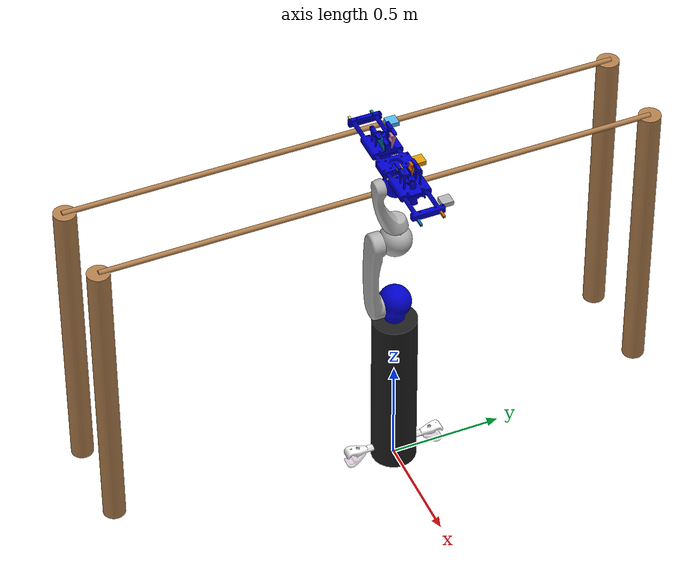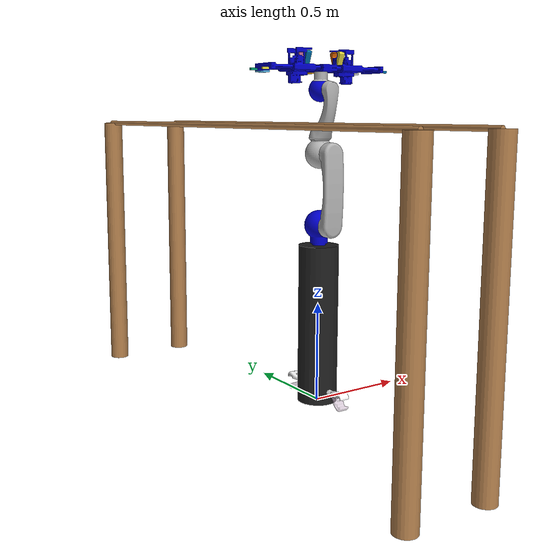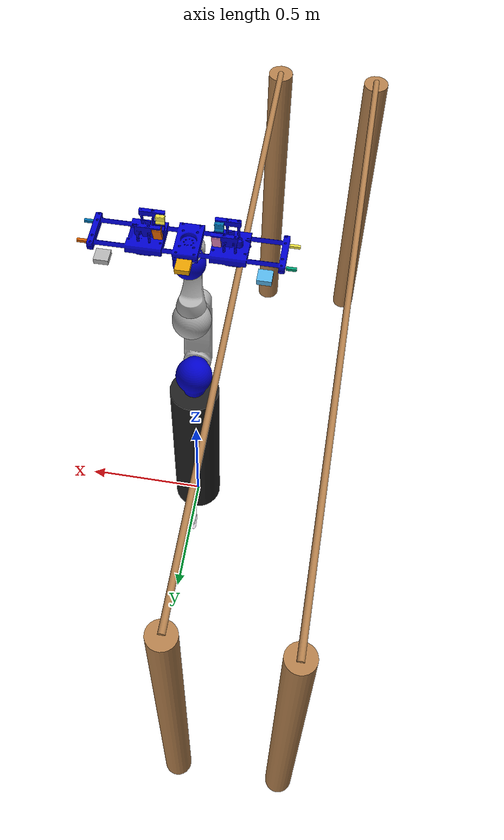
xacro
<?xml version="1.0" encoding="utf-8"?>
<robot xmlns:xacro="http://www.ros.org/wiki/xacro" name="lwa4p">
  <xacro:arg name="gazebo" default="true"/>

  <!-- includes -->
  <xacro:include filename="$(find schunk_lwa4p_description)/urdf/lwa4p/lwa4p_arm.xacro" >
  	<xacro:arg name="gazebo" value="${gazebo}"/>
  </xacro:include>
  <xacro:include filename="$(find schunk_lwa4p_description)/urdf/tools/separator.xacro">
	<xacro:arg name="gazebo" value="${gazebo}"/>
  </xacro:include>
  <xacro:include filename="$(find schunk_lwa4p_description)/urdf/tools/separator_distancer.xacro">
	<xacro:arg name="gazebo" value="${gazebo}"/>
  </xacro:include>
  <xacro:include filename="$(find schunk_lwa4p_description)/urdf/powerline.xacro"/>

  <xacro:include filename="$(find schunk_lwa4p_description)/urdf/common.xacro"/>

  <link name="world">
  </link>

  <joint name="world_base_joint" type="fixed">
	<parent link="world"/>
	<child link="base_link"/>
  </joint>

  <!-- foot for arm -->
  <link name="base_link">
	<visual>
		<origin xyz="0 0 0.4" rpy="0 0 0" />
		<geometry>
			<cylinder radius="0.1" length="0.8"/>
		</geometry>
		<material name="Gazebo/Black" />
	</visual>
	<collision>
		<origin xyz="0 0 0.4" rpy="0 0 0" />
		<geometry>
			<cylinder radius="0.1" length="0.8"/>
		</geometry>
	</collision>
	<inertial>
		<origin xyz="0 0 0.4" rpy="0 0 0"/>
		<mass value="10000.0"/>
		<inertia ixx="10000.0"  ixy="0"  ixz="0" iyy="10000.0" iyz="0" izz="10000.0" />
	</inertial>
  </link>

  <!-- arm -->
  <xacro:lwa4p_arm arm_id="lwa4p" parent="base_link" has_podest="true" >
    <origin xyz="0 0 0.8" rpy="0 0 0" />
  </xacro:lwa4p_arm>

  <!-- tool -->
  <xacro:separator ns="lwa4p" rpy="0 0 ${pi/2}" connected_to="lwa4p_link6" safety_distance="0.03"/>

  <!-- separator distancer -->
  <xacro:separator_distancer ns="lwa4p" rpy="0 0 0" xyz="0 0 0.05"/>

  <!-- powerline -->
  <xacro:powerline base_x="0" base_y="0" powerline_height="1.39" x_distance="0.15" y_distance="1.25" gazebo="true" two_cables="true" cable_distance="0.4"/>

</robot>

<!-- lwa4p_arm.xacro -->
<robot xmlns:xacro="http://www.ros.org/wiki/xacro" name="lwa4p">

  <xacro:macro name="lwa4p_arm" params="parent arm_id *origin has_podest">

    <xacro:include filename="$(find schunk_lwa4p_description)/urdf/common.xacro"/>
    <xacro:property name="safety_offset" value="0.02"/>
    <xacro:property name="dynamics_damping" value="0.5"/>
    <xacro:property name="dynamics_friction" value="0.5"/>

    <xacro:arg name="gazebo" default="true"/>
    <xacro:if value="$(arg gazebo)">
      <!-- Gazebo Tags -->
      <xacro:include filename="$(find schunk_lwa4p_description)/urdf/lwa4p/lwa4p_arm.gazebo.xacro"/>
    </xacro:if>

     <xacro:if value="${has_podest}">
      <!-- joint between base_link and lwa4p_extended_connector_link -->
      <joint name="${arm_id}_podest_joint" type="fixed">
        <xacro:insert_block name="origin" />
        <parent link="${parent}"/>
        <child link="${arm_id}_podest_link"/>
      </joint>

      <link name="${arm_id}_podest_link">
        <xacro:default_inertial/>
        <visual>
          <origin xyz="0 0 0" rpy="0 ${M_PI} 0" />
          <geometry>
            <mesh filename="package://schunk_lwa4p_description/meshes/lwa4p/stl/arm_base_link.stl" />
          </geometry>
           <material name="Schunk/DarkGrey" />
        </visual>

        <collision>
          <origin xyz="0 0 0" rpy="0 ${M_PI} 0" />
          <geometry>
          <mesh filename="package://schunk_lwa4p_description/meshes/lwa4p/stl/arm_base_link.stl" />
          </geometry>
        </collision>
      </link>

      <joint name="${arm_id}_base_joint" type="fixed">
        <origin xyz="0 0 0.10" rpy="0 0 0" />
        <parent link="${arm_id}_podest_link"/>
        <child link="${arm_id}_base_link"/>
      </joint>
    </xacro:if>

    <xacro:unless value="${has_podest}">
      <!-- joint between base_link and lwa4p_extended_connector_link -->
      <joint name="${arm_id}_base_joint" type="fixed">
        <xacro:insert_block name="origin" />
        <parent link="${parent}"/>
        <child link="${arm_id}_base_link"/>
      </joint>
    </xacro:unless>

    <link name="${arm_id}_base_link">
      <xacro:default_inertial/>
    </link>

    <!-- Link 1 -->
    <link name="${arm_id}_link1">
      <xacro:default_inertial/>
      <inertial>
        <origin xyz="0 0 0" rpy="0 0 0" />
        <mass value="0.29364"/>
        <inertia ixx="0.01" ixy="0" ixz="0" iyy="0.01" iyz="0" izz="0.01" />
      </inertial>
      <visual>
        <origin xyz="0 0 0" rpy="0 0 0" />
        <geometry>
          <mesh filename="package://schunk_lwa4p_description/meshes/lwa4p/stl/arm_1_link.stl" />
        </geometry>
        <material name="Schunk/Blue" />
      </visual>
      <collision>
        <origin xyz="0 0 0" rpy="0 0 0" />
        <geometry>
          <mesh filename="package://schunk_lwa4p_description/meshes/lwa4p/stl/arm_1_link.stl" />
        </geometry>
      </collision>
    </link>

    <!-- Joint 1 -->
    <joint name="${arm_id}_joint1" type="revolute">
      <origin xyz="0 0 0" rpy="0 0 0" />
      <parent link="${arm_id}_base_link"/>
      <child link="${arm_id}_link1"/>
      <axis xyz="0 0 1"/>
      <dynamics damping="${dynamics_damping}" friction="${dynamics_friction}"/>
      <limit effort="370" velocity="1.26" lower="${-2.967 + safety_offset}" upper="${2.967 - safety_offset}"/>
      <safety_controller k_position="20" k_velocity="50" soft_lower_limit="${-6.28 + 0.01}" soft_upper_limit="${6.28 - 0.01}"/>
    </joint>

    <!-- Link 2 -->
    <link name="${arm_id}_link2">
      <xacro:default_inertial/>
      <inertial>
        <origin xyz="0 0 0" rpy="0 0 0"/>
        <mass value="1.68311" />
        <inertia ixx="0.03" ixy="0" ixz="0" iyy="0.03" iyz="0" izz="0.03" />
      </inertial>
      <visual>
        <origin xyz="0 0 0" rpy="0 0 0" />
        <geometry>
          <mesh filename="package://schunk_lwa4p_description/meshes/lwa4p/stl/arm_2_link.stl" />
        </geometry>
        <material name="Schunk/LightGrey" />
      </visual>
      <collision>
        <origin xyz="0 0 0" rpy="0 0 0" />
        <geometry>
          <mesh filename="package://schunk_lwa4p_description/meshes/lwa4p/stl/arm_2_link.stl" />
        </geometry>
      </collision>
    </link>

    <!-- Joint 2 -->
    <!-- joint between arm_1_link and arm_2_link -->
    <joint name="${arm_id}_joint2" type="revolute">
      <origin xyz="0 0 0" rpy="1.5708 0 0"/>
      <parent link="${arm_id}_link1"/>
      <child link="${arm_id}_link2"/>
      <axis xyz="0 0 1"/>
      <dynamics damping="${dynamics_damping}" friction="${dynamics_friction}"/>
      <limit effort="370" velocity="1.26" lower="${-2.967 + safety_offset}" upper="${2.967 - safety_offset}"/>
      <safety_controller k_position="20" k_velocity="50" soft_lower_limit="${-2.09 + 0.01}" soft_upper_limit="${2.09 - 0.01}" />
    </joint>

    <!-- Link 3 -->
    <link name="${arm_id}_link3">
      <xacro:default_inertial/>
      <inertial>
        <origin xyz="0 0 0" rpy="0 0 0"/>
        <mass value="2.1"/>
        <inertia ixx="0.03" ixy="0" ixz="0" iyy="0.03" iyz="0" izz="0.03" />
      </inertial>
      <visual>
        <origin xyz="0 0 0" rpy="0 0 0" />
        <geometry>
          <mesh filename="package://schunk_lwa4p_description/meshes/lwa4p/stl/arm_3_link.stl" />
        </geometry>
        <material name="Schunk/LightGrey" />
      </visual>
      <collision>
        <origin xyz="0 0 0" rpy="0 0 0" />
        <geometry>
          <mesh filename="package://schunk_lwa4p_description/meshes/lwa4p/stl/arm_3_link.stl" />
        </geometry>
      </collision>
    </link>

    <!-- Joint 3 -->
    <!-- joint between arm_2_link and arm_3_link -->
    <joint name="${arm_id}_joint3" type="revolute">
      <origin xyz="0 0.350 0" rpy="0 3.14159 0"/>
      <parent link="${arm_id}_link2"/>
      <child link="${arm_id}_link3"/>
      <axis xyz="0 0 1"/>
      <dynamics damping="${dynamics_damping}" friction="${dynamics_friction}"/>
      <limit effort="176" velocity="1.26" lower="${-2.714 + safety_offset}" upper="${2.714 - safety_offset}"/>
      <safety_controller k_position="20" k_velocity="25" soft_lower_limit="${-6.28 + 0.01}" soft_upper_limit="${6.28 - 0.01}" />
    </joint>

    <!-- Link 4 -->
    <link name="${arm_id}_link4">
      <xacro:default_inertial/>
      <inertial>
        <origin xyz="0 0 0" rpy="0 0 0"/>
        <mass value="1.68311"/>
        <inertia ixx="0.03" ixy="0" ixz="0" iyy="0.03" iyz="0" izz="0.03" />
      </inertial>
      <visual>
        <origin xyz="0 0 0" rpy="0 0 0" />
        <geometry>
          <mesh filename="package://schunk_lwa4p_description/meshes/lwa4p/stl/arm_4_link.stl" />
        </geometry>
        <material name="Schunk/LightGrey" />
      </visual>
      <collision>
        <origin xyz="0 0 0" rpy="0 0 0" />
        <geometry>
          <mesh filename="package://schunk_lwa4p_description/meshes/lwa4p/stl/arm_4_link.stl" />
        </geometry>
      </collision>
    </link>

    <!-- Joint 4 -->
    <!-- joint between arm_4_link and arm_5_link -->
    <joint name="${arm_id}_joint4" type="revolute">
      <origin xyz="0 0 0" rpy="-1.5708 3.14159 0" />
      <parent link="${arm_id}_link3"/>
      <child link="${arm_id}_link4"/>
      <axis xyz="0 0 1" />
      <dynamics damping="${dynamics_damping}" friction="${dynamics_friction}"/>
      <limit effort="176" velocity="1.26" lower="${-2.967 + safety_offset}" upper="${2.967 - safety_offset}"/>
      <safety_controller k_position="20" k_velocity="25" soft_lower_limit="${-2.09 + 0.01}" soft_upper_limit="${2.09 - 0.01}" />
    </joint>

    <!-- Link 5 -->
    <link name="${arm_id}_link5">
      <xacro:default_inertial/>
      <inertial>
        <origin xyz="0 0 0" rpy="0 0 0"/>
        <mass value="0.807"/>
        <inertia ixx="0.03" ixy="0" ixz="0" iyy="0.03" iyz="0" izz="0.03" />
      </inertial>
      <visual>
        <origin xyz="0 0 0" rpy="0 0 0" />
        <geometry>
          <mesh filename="package://schunk_lwa4p_description/meshes/lwa4p/stl/arm_5_link.stl" />
        </geometry>
        <material name="Schunk/Blue" />
      </visual>
      <collision>
        <origin xyz="0 0 0" rpy="0 0 0" />
        <geometry>
          <mesh filename="package://schunk_lwa4p_description/meshes/lwa4p/stl/arm_5_link.stl" />
        </geometry>
      </collision>
    </link>

    <!-- Joint 5 -->
    <!-- joint between arm_4_link and arm_5_link -->
    <joint name="${arm_id}_joint5" type="revolute">
      <origin xyz="0 0.0 0.305" rpy="1.5708 0 3.14159" />
      <parent link="${arm_id}_link4"/>
      <child link="${arm_id}_link5"/>
      <axis xyz="0 0 1" />
      <dynamics damping="${dynamics_damping}" friction="${dynamics_friction}"/>
      <limit effort="41.6" velocity="1.26" lower="${-2.967 + safety_offset}" upper="${2.967 - safety_offset}" />
      <safety_controller k_position="20" k_velocity="25" soft_lower_limit="${-6.28 + 0.01}" soft_upper_limit="${6.28 - 0.01}" />
    </joint>

    <!-- Link 6 -->
    <link name="${arm_id}_link6">
      <xacro:default_inertial/>
      <inertial>
        <origin xyz="0 0 0" rpy="0 0 0"/>
        <mass value="0.819"/>
        <inertia ixx="0.01" ixy="0" ixz="0" iyy="0.01" iyz="0" izz="0.01" />
      </inertial>
      <visual>
        <origin xyz="0 0 0" rpy="0 0 0" />
        <geometry>
          <mesh filename="package://schunk_lwa4p_description/meshes/lwa4p/stl/arm_6_link.stl" />
        </geometry>
        <material name="Schunk/LightGrey" />
      </visual>
      <collision>
        <origin xyz="0 0 0" rpy="0 0 0" />
        <geometry>
          <mesh filename="package://schunk_lwa4p_description/meshes/lwa4p/stl/arm_6_link.stl" />
        </geometry>
      </collision>
    </link>

    <!-- Joint 6 -->
    <!-- joint between arm_5_link and arm_6_link -->
    <joint name="${arm_id}_joint6" type="revolute">
      <origin xyz="0 0 0" rpy="-1.5708 0 0" />
      <parent link="${arm_id}_link5"/>
      <child link="${arm_id}_link6"/>
      <axis xyz="0 0 1" />
      <dynamics damping="${dynamics_damping}" friction="${dynamics_friction}"/>
      <limit effort="20.1" velocity="1.26" lower="${-2.967 + safety_offset}" upper="${2.967 - safety_offset}" />
      <safety_controller k_position="20" k_velocity="25" soft_lower_limit="${-2.09 + 0.01}" soft_upper_limit="${2.09 - 0.01}" />
    </joint>
  </xacro:macro>

</robot>

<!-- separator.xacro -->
<robot xmlns:xacro="http://www.ros.org/wiki/xacro" name="separator">

    <xacro:macro name="separator" params="connected_to:='' ns:='' rpy:='0 0 0' xyz:='0 0 0.1' safety_distance:=0">
        <xacro:unless value="${connected_to == ''}">
            <joint name="${ns}_separator_joint" type="fixed">
                <parent link="${connected_to}"/>
                <child link="separator_base"/>
                <origin xyz="${xyz}" rpy="${rpy}"/>
            </joint>
        </xacro:unless>

        <xacro:arg name="gazebo" default="true"/>
            <xacro:if value="$(arg gazebo)">
            <!-- Gazebo Tags -->
            <xacro:include filename="$(find schunk_lwa4p_description)/urdf/tools/separator.gazebo.xacro"/>
        </xacro:if>

        <xacro:property name="scale_factor" value="3.937007"/>

        <material name="blue">
            <color rgba="0 0 0.8 1"/>
        </material>

        <material name="white">
            <color rgba="1 1 1 1"/>
        </material>

        <material name="custom">
            <color rgba="0.8 0.7 0.8 0.5"/>
        </material>

        <link name="separator_base">
            <inertial>
                <origin rpy="0 0 0" xyz="0 0 0"/>
                <mass value="2.5" />
                <inertia ixx="1" ixy="0.0" ixz="0.0" iyy="1" iyz="0.0" izz="1"/>
            </inertial>
            <visual>
                <origin rpy="0 0 0" xyz="0 0 0"/>
                <geometry>
                    <mesh filename="package://schunk_lwa4p_description/meshes/separator/baza2.STL" scale="0.0254 0.0254 0.0254"/>
                </geometry>
                <material name="blue"/>
            </visual>
            <collision>
                <origin rpy="0 0 0" xyz="0 0 0"/>
                <geometry>
                    <mesh filename="package://schunk_lwa4p_description/meshes/separator/baza2.STL" scale="0.0254 0.0254 0.0254"/>
                </geometry>
            </collision>
        </link>

        <link name="right_front_holder">
            <inertial>
                <origin rpy="0 0 0" xyz="-${0.032/scale_factor} -${0.385443/scale_factor} -${0.16/scale_factor}"/>
                <mass value="0.1" />
                <inertia ixx="1" ixy="0.0" ixz="0.0" iyy="1" iyz="0.0" izz="1"/>
            </inertial>
            <visual>
                <origin rpy="0 0 0" xyz="-${0.032/scale_factor} -${0.385443/scale_factor} -${0.16/scale_factor}"/>
                <geometry>
                    <mesh filename="package://schunk_lwa4p_description/meshes/separator/desni_prednji_drzac.STL" scale="0.0254 0.0254 0.0254"/>
                </geometry>
            </visual>
            <collision>
                <origin rpy="0 0 0" xyz="-${0.032/scale_factor} -${0.385443/scale_factor} -${0.16/scale_factor}"/>
                <geometry>
                    <mesh filename="package://schunk_lwa4p_description/meshes/separator/desni_prednji_drzac.STL" scale="0.0254 0.0254 0.0254"/>
                </geometry>
            </collision>
        </link>

        <joint name="separator_right_front_joint" type="revolute">
            <parent link="separator_base"/>
            <child link="right_front_holder"/>
            <origin xyz="${0.032/scale_factor} ${0.385443/scale_factor} ${0.16/scale_factor}" rpy="0 0 0"/>
            <limit effort="1000" velocity="0.5" lower="-0.32" upper="0"/>
            <axis xyz="0 1 0"/>
        </joint>

        <link name="right_back_holder">
            <inertial>
                <origin rpy="0 0 0" xyz="-${0.032/scale_factor} ${0.385443/scale_factor} -${0.16/scale_factor}"/>
                <mass value="0.1" />
                <inertia ixx="1" ixy="0.0" ixz="0.0" iyy="1" iyz="0.0" izz="1"/>
            </inertial>
            <visual>
                <origin rpy="0 0 0" xyz="-${0.032/scale_factor} ${0.385443/scale_factor} -${0.16/scale_factor}"/>
                <geometry>
                    <mesh filename="package://schunk_lwa4p_description/meshes/separator/desni_zadnji_drzac.STL" scale="0.0254 0.0254 0.0254"/>
                </geometry>
            </visual>
            <collision>
                <origin rpy="0 0 0" xyz="-${0.032/scale_factor} ${0.385443/scale_factor} -${0.16/scale_factor}"/>
                <geometry>
                    <mesh filename="package://schunk_lwa4p_description/meshes/separator/desni_zadnji_drzac.STL" scale="0.0254 0.0254 0.0254"/>
                </geometry>
            </collision>
        </link>

        <joint name="separator_right_back_joint" type="revolute">
            <parent link="separator_base"/>
            <child link="right_back_holder"/>
            <origin xyz="${0.032/scale_factor} -${0.385443/scale_factor} ${0.16/scale_factor}" rpy="0 0 0"/>
            <limit effort="1000" velocity="0.5" lower="-0.32" upper="0"/>
            <axis xyz="0 1 0"/>
        </joint>

        <link name="left_front_holder">
            <inertial>
                <origin rpy="0 0 0" xyz="${0.032/scale_factor} -${0.385443/scale_factor} -${0.16/scale_factor}"/>
                <mass value="0.1" />
                <inertia ixx="1" ixy="0.0" ixz="0.0" iyy="1" iyz="0.0" izz="1"/>
            </inertial>
            <visual>
                <origin rpy="0 0 0" xyz="${0.032/scale_factor} -${0.385443/scale_factor} -${0.16/scale_factor}"/>
                <geometry>
                    <mesh filename="package://schunk_lwa4p_description/meshes/separator/lijevi_prednji_drzac.STL" scale="0.0254 0.0254 0.0254"/>
                </geometry>
            </visual>
            <collision>
                <origin rpy="0 0 0" xyz="${0.032/scale_factor} -${0.385443/scale_factor} -${0.16/scale_factor}"/>
                <geometry>
                    <mesh filename="package://schunk_lwa4p_description/meshes/separator/lijevi_prednji_drzac.STL" scale="0.0254 0.0254 0.0254"/>
                </geometry>
            </collision>
        </link>

        <joint name="separator_left_front_joint" type="revolute">
            <parent link="separator_base"/>
            <child link="left_front_holder"/>
            <origin xyz="-${0.032/scale_factor} ${0.385443/scale_factor}  ${0.16/scale_factor}" rpy="0 0 0"/>
            <limit effort="1000" velocity="0.5" lower="0" upper="0.32"/>
            <axis xyz="0 1 0"/>
        </joint>

        <link name="left_back_holder">
            <inertial>
                <origin rpy="0 0 0" xyz="${0.032/scale_factor} ${0.385443/scale_factor}  -${0.16/scale_factor}"/>
                <mass value="0.1" />
                <inertia ixx="1" ixy="0.0" ixz="0.0" iyy="1" iyz="0.0" izz="1"/>
            </inertial>
            <visual>
                <origin rpy="0 0 0" xyz="${0.032/scale_factor} ${0.385443/scale_factor}  -${0.16/scale_factor}"/>
                <geometry>
                    <mesh filename="package://schunk_lwa4p_description/meshes/separator/lijevi_zadnji_drzac.STL" scale="0.0254 0.0254 0.0254"/>
                </geometry>
            </visual>
            <collision>
                <origin rpy="0 0 0" xyz="${0.032/scale_factor} ${0.385443/scale_factor} -${0.16/scale_factor}"/>
                <geometry>
                    <mesh filename="package://schunk_lwa4p_description/meshes/separator/lijevi_zadnji_drzac.STL" scale="0.0254 0.0254 0.0254"/>
                </geometry>
            </collision>
        </link>

        <joint name="separator_left_back_joint" type="revolute">
            <parent link="separator_base"/>
            <child link="left_back_holder"/>
            <origin xyz="-${0.032/scale_factor} -${0.385443/scale_factor}  ${0.16/scale_factor}" rpy="0 0 0"/>
            <limit effort="1000" velocity="0.5" lower="0" upper="0.32"/>
            <axis xyz="0 1 0"/>
        </joint>

        <!-- Add IMUs to mitiagate possible collision !-->
        <link name="imu1">
            <intertial>
                <origin rpy="0 0 0" xyz="0 0 0"/>
                <mass value="0.01"/>
                <inertia ixx="0.01" ixy="0.0" ixz="0.0" iyz="0.0" izz="0.01"/>
            </intertial>
            <visual>
                <origin rpy="0 0 0" xyz="0 0 0"/>
                <geometry>
                    <box size="0.05 0.05 0.02"/>
                </geometry>
            </visual>
            <collision>
                <origin rpy="0 0 0" xyz="0 0 0"/>
                <geometry>
                    <box size="0.05 0.05 0.02"/>
                </geometry>
            </collision>
        </link>

        <joint name="separator_imu1" type="fixed">
            <parent link="separator_base"/>
            <child link="imu1"/>
            <origin xyz="-0.1 0.27 -0.01" rpy="0 0 0"/>
        </joint>

        <link name="imu2">
            <intertial>
                <origin rpy="0 0 0" xyz="0 0 0"/>
                <mass value="0.01"/>
                <inertia ixx="0.01" ixy="0.0" ixz="0.0" iyz="0.0" izz="0.01"/>
            </intertial>
            <visual>
                <origin rpy="0 0 0" xyz="0 0 0"/>
                <geometry>
                    <box size="0.05 0.05 0.02"/>
                </geometry>
            </visual>
            <collision>
                <origin rpy="0 0 0" xyz="0 0 0"/>
                <geometry>
                    <box size="0.05 0.05 0.02"/>
                </geometry>
            </collision>
        </link>

        <joint name="separator_imu2" type="fixed">
            <parent link="separator_base"/>
            <child link="imu2"/>
            <origin xyz="-0.1 0.0 -0.01" rpy="0 0 0"/>
        </joint>

        <link name="imu3">
            <intertial>
                <origin rpy="0 0 0" xyz="0 0 0"/>
                <mass value="0.01"/>
                <inertia ixx="0.01" ixy="0.0" ixz="0.0" iyz="0.0" izz="0.01"/>
            </intertial>
            <visual>
                <origin rpy="0 0 0" xyz="0 0 0"/>
                <geometry>
                    <box size="0.05 0.05 0.02"/>
                </geometry>
            </visual>
            <collision>
                <origin rpy="0 0 0" xyz="0 0 0"/>
                <geometry>
                    <box size="0.05 0.05 0.02"/>
                </geometry>
            </collision>
        </link>

        <joint name="separator_imu3" type="fixed">
            <parent link="separator_base"/>
            <child link="imu3"/>
            <origin xyz="-0.1 -0.27 -0.01" rpy="0 0 0"/>
        </joint>

        <link name="addition1">
            <intertial>
                <origin rpy="0 0 0" xyz="0 0 0"/>
                <mass value="0.01"/>
                <inertia ixx="0.01" ixy="0.0" ixz="0.0" iyz="0.0" izz="0.01"/>
            </intertial>
            <visual>
                <origin rpy="0 0 0" xyz="0 0 0"/>
                <geometry>
                    <box size="0.01 0.035 0.01"/>
                </geometry>
            </visual>
            <collision>
                <origin rpy="0 0 0" xyz="0 0 0"/>
                <geometry>
                    <box size="0.01 0.035 0.01"/>
                </geometry>
            </collision>
        </link>

        <joint name="separator_addition1" type="fixed">
            <parent link="separator_base"/>
            <child link="addition1"/>
            <origin xyz="-0.05 -0.35 -0.01" rpy="0 0 0"/>
        </joint>

        <link name="addition2">
            <intertial>
                <origin rpy="0 0 0" xyz="0 0 0"/>
                <mass value="0.01"/>
                <inertia ixx="0.01" ixy="0.0" ixz="0.0" iyz="0.0" izz="0.01"/>
            </intertial>
            <visual>
                <origin rpy="0 0 0" xyz="0 0 0"/>
                <geometry>
                    <box size="0.01 0.035 0.01"/>
                </geometry>
            </visual>
            <collision>
                <origin rpy="0 0 0" xyz="0 0 0"/>
                <geometry>
                    <box size="0.01 0.035 0.01"/>
                </geometry>
            </collision>
        </link>

        <joint name="separator_addition2" type="fixed">
            <parent link="separator_base"/>
            <child link="addition2"/>
            <origin xyz="0.05 -0.35 -0.01" rpy="0 0 0"/>
        </joint>

        <link name="addition3">
            <intertial>
                <origin rpy="0 0 0" xyz="0 0 0"/>
                <mass value="0.01"/>
                <inertia ixx="0.01" ixy="0.0" ixz="0.0" iyz="0.0" izz="0.01"/>
            </intertial>
            <visual>
                <origin rpy="0 0 0" xyz="0 0 0"/>
                <geometry>
                    <box size="0.01 0.035 0.01"/>
                </geometry>
            </visual>
            <collision>
                <origin rpy="0 0 0" xyz="0 0 0"/>
                <geometry>
                    <box size="0.01 0.035 0.01"/>
                </geometry>
            </collision>
        </link>

        <joint name="separator_addition3" type="fixed">
            <parent link="separator_base"/>
            <child link="addition3"/>
            <origin xyz="0.05 0.35 -0.01" rpy="0 0 0"/>
        </joint>

        <link name="addition4">
            <intertial>
                <origin rpy="0 0 0" xyz="0 0 0"/>
                <mass value="0.01"/>
                <inertia ixx="0.01" ixy="0.0" ixz="0.0" iyz="0.0" izz="0.01"/>
            </intertial>
            <visual>
                <origin rpy="0 0 0" xyz="0 0 0"/>
                <geometry>
                    <box size="0.01 0.035 0.01"/>
                </geometry>
            </visual>
            <collision>
                <origin rpy="0 0 0" xyz="0 0 0"/>
                <geometry>
                    <box size="0.01 0.035 0.01"/>
                </geometry>
            </collision>
        </link>

        <joint name="separator_addition4" type="fixed">
            <parent link="separator_base"/>
            <child link="addition4"/>
            <origin xyz="-0.05 0.35 0.0" rpy="0 0 0"/>
        </joint>

    </xacro:macro>
</robot>

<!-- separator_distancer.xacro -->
<robot xmlns:xacro="http://www.ros.org/wiki/xacro" name="separator_distancer">

    <xacro:macro name="separator_distancer" params="rpy:='0 0 0' ns:='' xyz:='0 0 0.1'">

        <xacro:property name="scale_factor" value="3.937007"/>

        <xacro:arg name="gazebo" default="true"/>
            <xacro:if value="$(arg gazebo)">
            <!-- Gazebo Tags -->
            <xacro:include filename="$(find schunk_lwa4p_description)/urdf/tools/separator_distancer.gazebo.xacro"/>
        </xacro:if>

        <link name="separator_main">
            <inertial>
                <origin rpy="0 0 0" xyz="0 0 0"/>
                <mass value="1" />
                <inertia ixx="1" ixy="0.0" ixz="0.0" iyy="1" iyz="0.0" izz="1"/>
            </inertial>
            <visual>
                <origin rpy="0 0 0" xyz="0 0 0"/>
                <geometry>
                    <mesh filename="package://schunk_lwa4p_description/meshes/separator/separator3.STL" scale="0.0254 0.0254 0.0254"/>
                </geometry>
                <material name="white"/>
            </visual>
            <collision>
                <origin rpy="0 0 0" xyz="0 0 0"/>
                <geometry>
                    <mesh filename="package://schunk_lwa4p_description/meshes/separator/separator3.STL" scale="0.0254 0.0254 0.0254"/>
                </geometry>
            </collision>
        </link>

        <joint name="world_separator" type="floating">
            <parent link="world"/>
            <child link="separator_main"/>
            <origin rpy="${rpy}" xyz="${xyz}"/>
        </joint>

        <link name="separator_right_head">
            <inertial>
                <origin rpy="0 0 0" xyz="0 0 0"/>
                <mass value="0.2" />
                <inertia ixx="1" ixy="0.0" ixz="0.0" iyy="1" iyz="0.0" izz="1"/>
            </inertial>
            <visual>
                <origin rpy="0 0 0" xyz="0 ${0.545/scale_factor} -0.01"/>
                <geometry>
                    <mesh filename="package://schunk_lwa4p_description/meshes/separator/separator1.STL" scale="0.0254 0.0254 0.0254"/>
                </geometry>
                <material name="custom"/>
            </visual>
            <collision>
                <origin rpy="0 0 0" xyz="0 ${0.545/scale_factor} -0.01"/>
                <geometry>
                    <mesh filename="package://schunk_lwa4p_description/meshes/separator/separator1.STL" scale="0.0254 0.0254 0.0254"/>
                </geometry>
            </collision>
        </link>

        <joint name="separator_main_right_head_joint" type="revolute">
            <parent link="separator_main"/>
            <child link="separator_right_head"/>
            <origin xyz="0 -${0.54/scale_factor} 0" rpy="0 0 0"/>
            <limit effort="10" velocity="0.5" lower="-0.45" upper="0"/>
            <axis xyz="1 0 0"/>
        </joint>

        <link name="separator_left_head">
            <inertial>
                <origin rpy="0 0 0" xyz="0 0 0"/>
                <mass value="0.2" />
                <inertia ixx="1" ixy="0.0" ixz="0.0" iyy="1" iyz="0.0" izz="1"/>
                <material name="white"/>
            </inertial>
            <visual>
                <origin rpy="0 0 0" xyz="0 -${0.545/scale_factor} -0.01"/>
                <geometry>
                    <mesh filename="package://schunk_lwa4p_description/meshes/separator/separator2.STL" scale="0.0254 0.0254 0.0254"/>
                </geometry>
                <material name="custom"/>
            </visual>
            <collision>
                <origin rpy="0 0 0" xyz="0 -${0.545/scale_factor} -0.01"/>
                <geometry>
                    <mesh filename="package://schunk_lwa4p_description/meshes/separator/separator2.STL" scale="0.0254 0.0254 0.0254"/>
                </geometry>
            </collision>
        </link>

        <joint name="separator_main_left_head_joint" type="revolute">
            <parent link="separator_main"/>
            <child link="separator_left_head"/>
            <origin xyz="0 ${0.54/scale_factor} 0" rpy="0 0 0"/>
            <limit effort="10" velocity="0.5" lower="0" upper="0.45"/>
            <axis xyz="1 0 0"/>
        </joint>
    </xacro:macro>
</robot>

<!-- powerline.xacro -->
<robot xmlns:xacro="http://www.ros.org/wiki/xacro" name="powerline">

    <xacro:macro name="powerline" params="base_x:=0 base_y:=0 powerline_height:=0 x_distance:=0.75 y_distance:=1 two_cables:=true gazebo:=true cable_distance=0.25">

      <xacro:arg name="gazebo" default="true"/>
            <xacro:if value="$(arg gazebo)">
            <!-- Gazebo Tags -->
                <xacro:include filename="$(find schunk_lwa4p_description)/urdf/powerline.gazebo.xacro"/>
            </xacro:if>

        <joint name="base_powerline_link1" type="fixed">
            <origin xyz="-${x_distance} -${y_distance} ${powerline_height/2}" rpy="0 0 -1.507"/>
            <parent link="base_link"/>
            <child link="powerline_link1"/>
        </joint>

        <!-- foot for powerline -->
	    <link name="powerline_link1">
		    <visual>
		        <origin xyz="0 0 0" rpy="0 0 0" />
		        <geometry>
			        <cylinder radius="0.05" length="${powerline_height}"/>
		        </geometry>
		        <material name="Gazebo/WoodFloor" />
		    </visual>
		    <collision>
		        <origin xyz="0 0 0" rpy="0 0 0" />
		        <geometry>
		            <cylinder radius="0.01" length="${powerline_height}"/>
		        </geometry>
		    </collision>
		    <inertial>
		        <origin xyz="0 0 0" rpy="0 0 0"/>
		        <mass value="10000.0"/>
		        <inertia ixx="10000.0"  ixy="0"  ixz="0" iyy="10000.0" iyz="0" izz="10000.0" />
		    </inertial>
	    </link>

        <joint name="base_powerline_link2"  type="fixed">
            <origin xyz="-${x_distance} ${y_distance} ${powerline_height/2}" rpy="0 0 -1.507"/>
            <parent link="base_link"/>
            <child link="powerline_link2"/>
        </joint>

        <link name="powerline_link2">
		<visual>
		   <origin xyz="0 0 0" rpy="0 0 0" />
		   <geometry>
			  <cylinder radius="0.05" length="${powerline_height}"/>
		   </geometry>
		   <material name="Gazebo/WoodFloor" />
		</visual>
		<collision>
		   <origin xyz="0 0 0" rpy="0 0 0" />
		   <geometry>
			  <cylinder radius="0.05" length="${powerline_height}"/>
		   </geometry>
		</collision>
		<inertial>
		   <origin xyz="0 0 0" rpy="0 0 0"/>
		   <mass value="10000.0"/>
		   <inertia ixx="10000.0"  ixy="0"  ixz="0" iyy="10000.0" iyz="0" izz="10000.0" />
		</inertial>
	</link>

    <joint name="base_powerline_cable1" type="fixed">
        <origin xyz="-${x_distance} 0 ${powerline_height}" rpy="0 0 0"/>
        <parent link="base_link"/>
        <child link="powerline_cable1"/>
    </joint>

    <link name="powerline_cable1">
        <visual>
		   <origin xyz="0 0 0" rpy="1.5708 0 0" />
		   <geometry>
			  <cylinder radius="0.012" length="${y_distance*2}"/>
		   </geometry>
		   <material name="Gazebo/WoodFloor" />
		</visual>
		<collision>
		   <origin xyz="0 0 0" rpy="1.5708 0 0" />
		   <geometry>
			  <cylinder radius="0.012" length="${y_distance*2}"/>
		   </geometry>
		</collision>
		<inertial>
		   <origin xyz="0 0 0" rpy="1.5708 0 0"/>
		   <mass value="10000.0"/>
		   <inertia ixx="10000.0"  ixy="0"  ixz="0" iyy="10000.0" iyz="0" izz="10000.0" />
		</inertial>
	</link>

    <xacro:if value="${two_cables}">

        <joint name="base_powerline_link3" type="fixed">
            <origin xyz="-${x_distance + cable_distance} -${y_distance} ${powerline_height/2}" rpy="0 0 0"/>
            <parent link="base_link"/>
            <child link="powerline_link3"/>
        </joint>

	    <link name="powerline_link3">
		    <visual>
		        <origin xyz="0 0 0" rpy="0 0 0" />
		        <geometry>
			        <cylinder radius="0.05" length="${powerline_height}"/>
		        </geometry>
		        <material name="Gazebo/WoodFloor" />
		    </visual>
		    <collision>
		        <origin xyz="0 0 0" rpy="0 0 0" />
		        <geometry>
		            <cylinder radius="0.05" length="${powerline_height}"/>
		        </geometry>
		    </collision>
		    <inertial>
		        <origin xyz="0 0 0" rpy="0 0 0"/>
		        <mass value="10000.0"/>
		        <inertia ixx="10000.0"  ixy="0"  ixz="0" iyy="10000.0" iyz="0" izz="10000.0" />
		    </inertial>
	    </link>

        <joint name="base_powerline_link4" type="fixed">
            <origin xyz="-${x_distance + cable_distance} ${y_distance} ${powerline_height/2}" rpy="0 0 0"/>
            <parent link="base_link"/>
            <child link="powerline_link4"/>
        </joint>

        <link name="powerline_link4">
            <visual>
                <origin xyz="0 0 0" rpy="0 0 0" />
                <geometry>
                    <cylinder radius="0.05" length="${powerline_height}"/>
                </geometry>
                <material name="Gazebo/WoodFloor" />
            </visual>
                <collision>
                <origin xyz="0 0 0" rpy="0 0 0" />
                <geometry>
                    <cylinder radius="0.05" length="${powerline_height}"/>
                </geometry>
            </collision>
            <inertial>
                <origin xyz="0 0 0" rpy="0 0 0"/>
                <mass value="10000.0"/>
                <inertia ixx="10000.0"  ixy="0"  ixz="0" iyy="10000.0" iyz="0" izz="10000.0" />
            </inertial>
	    </link>

        <joint name="base_powerline_cable2" type="fixed">
            <origin xyz="-${x_distance + cable_distance} 0 ${powerline_height}" rpy="0 0 0"/>
            <parent link="base_link"/>
            <child link="powerline_cable2"/>
        </joint>

        <link name="powerline_cable2">
            <visual>
                <origin xyz="0 0 0" rpy="1.5708 0 0" />
                <geometry>
                    <cylinder radius="0.012" length="${y_distance*2.02}"/>
                </geometry>
                <material name="Gazebo/WoodFloor" />
            </visual>
            <collision>
                <origin xyz="0 0 0" rpy="1.5708 0 0" />
                <geometry>
                    <cylinder radius="0.012" length="${y_distance*2.02}"/>
                </geometry>
            </collision>
            <inertial>
                <origin xyz="0 0 0" rpy="1.5708 0 0"/>
                <mass value="10000.0"/>
                <inertia ixx="10000.0"  ixy="0"  ixz="0" iyy="10000.0" iyz="0" izz="10000.0" />
            </inertial>
        </link>

    </xacro:if>

    </xacro:macro>

</robot>

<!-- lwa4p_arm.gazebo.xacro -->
<robot xmlns:xacro="http://www.ros.org/wiki/xacro" name="lwa4p">

  <xacro:include filename="$(find schunk_lwa4p_description)/urdf/materials.urdf.xacro"/>

  <gazebo reference="${arm_id}_link1">
    <gravity>true</gravity>
      <self_collide>false</self_collide>
      <material value="Gazebo/Grey" />
  </gazebo>

  <gazebo reference="${arm_id}_link2">
    <gravity>true</gravity>
    <self_collide>false</self_collide>
    <material value="Gazebo/Blue" />
  </gazebo>

  <gazebo reference="${arm_id}_link3">
    <gravity>true</gravity>
    <self_collide>false</self_collide>
    <material value="Gazebo/Grey" />
  </gazebo>

  <gazebo reference="${arm_id}_link4">
    <gravity>true</gravity>
    <self_collide>false</self_collide>
    <material value="Gazebo/Blue" />
  </gazebo>

  <gazebo reference="${arm_id}_link5">
    <gravity>true</gravity>
    <self_collide>false</self_collide>
    <material value="Gazebo/Grey" />
  </gazebo>

  <gazebo reference="${arm_id}_link6">
    <gravity>true</gravity>
    <self_collide>false</self_collide>
    <material value="Gazebo/Blue" />
  </gazebo>

  <!-- To have fully consistent Gazebo simulation it should have 2 IMUs for 1 power cable and 3 IMUs for 2 power cables -->

  <gazebo>
    <plugin name="gazebo_ros_control" filename="libgazebo_ros_control.so">
      <robotNamespace>/lwa4p</robotNamespace>
      <legacyModeNS>true</legacyModeNS>
    </plugin>
  </gazebo>

  <transmission name="${arm_id}_joint1_trans">
    <type>transmission_interface/SimpleTransmission</type>
    <joint name="${arm_id}_joint1">
      <hardwareInterface>hardware_interface/PositionJointInterface</hardwareInterface>
    </joint>
    <actuator name="${arm_id}_joint1_motor">
      <mechanicalReduction>1</mechanicalReduction>
    </actuator>
  </transmission>

  <transmission name="${arm_id}_joint2_trans">
    <type>transmission_interface/SimpleTransmission</type>
    <joint name="${arm_id}_joint2">
      <hardwareInterface>hardware_interface/PositionJointInterface</hardwareInterface>
    </joint>
    <actuator name="${arm_id}_joint2_motor">
      <mechanicalReduction>1</mechanicalReduction>
    </actuator>
  </transmission>

  <transmission name="${arm_id}_joint3_trans">
    <type>transmission_interface/SimpleTransmission</type>
    <joint name="${arm_id}_joint3">
      <hardwareInterface>hardware_interface/PositionJointInterface</hardwareInterface>
    </joint>
    <actuator name="${arm_id}_joint3_motor">
      <mechanicalReduction>1</mechanicalReduction>
    </actuator>
  </transmission>

  <transmission name="${arm_id}_joint4_trans">
    <type>transmission_interface/SimpleTransmission</type>
    <joint name="${arm_id}_joint4">
      <hardwareInterface>hardware_interface/PositionJointInterface</hardwareInterface>
    </joint>
    <actuator name="${arm_id}_joint4_motor">
      <mechanicalReduction>1</mechanicalReduction>
    </actuator>
  </transmission>

  <transmission name="${arm_id}_joint5_trans">
    <type>transmission_interface/SimpleTransmission</type>
    <joint name="${arm_id}_joint5">
      <hardwareInterface>hardware_interface/PositionJointInterface</hardwareInterface>
    </joint>
    <actuator name="${arm_id}_joint5_motor">
      <mechanicalReduction>1</mechanicalReduction>
    </actuator>
  </transmission>

  <transmission name="${arm_id}_joint6_trans">
    <type>transmission_interface/SimpleTransmission</type>
    <joint name="${arm_id}_joint6">
      <hardwareInterface>hardware_interface/PositionJointInterface</hardwareInterface>
    </joint>
    <actuator name="${arm_id}_joint6_motor">
      <mechanicalReduction>1</mechanicalReduction>
    </actuator>
  </transmission>

</robot>

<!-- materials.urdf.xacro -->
<robot>

  <material name="Schunk/LightGrey">
    <color rgba="0.7 0.7 0.7 1.0"/>
  </material>

  <material name="Schunk/DarkGrey">
    <color rgba="0.4 0.4 0.4 1.0"/>
  </material>

  <material name="Schunk/Black">
    <color rgba="0.0 0.0 0.0 1.0"/>
  </material>

  <material name="Schunk/DarkGolden">
    <color rgba="0.4 0.4 0.3 1.0"/>
  </material>

  <material name="Schunk/Blue">
    <color rgba="0.0 0.0 0.8 1.0"/>
  </material>

  <material name="Schunk/Red">
    <color rgba="0.8 0.0 0.0 1.0"/>
  </material>

</robot>
